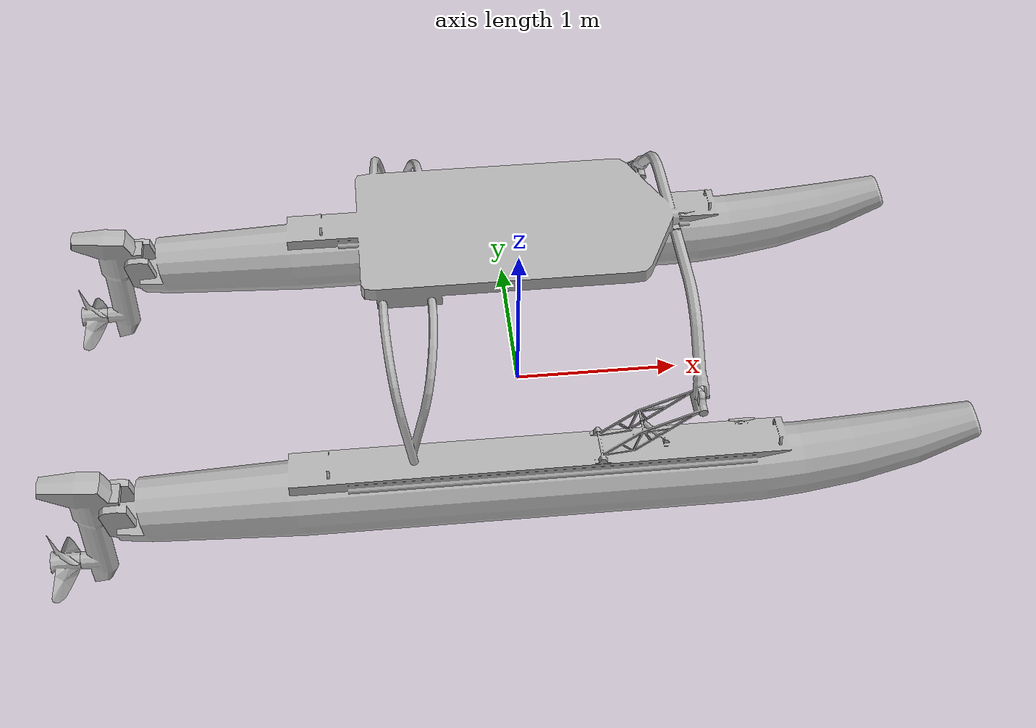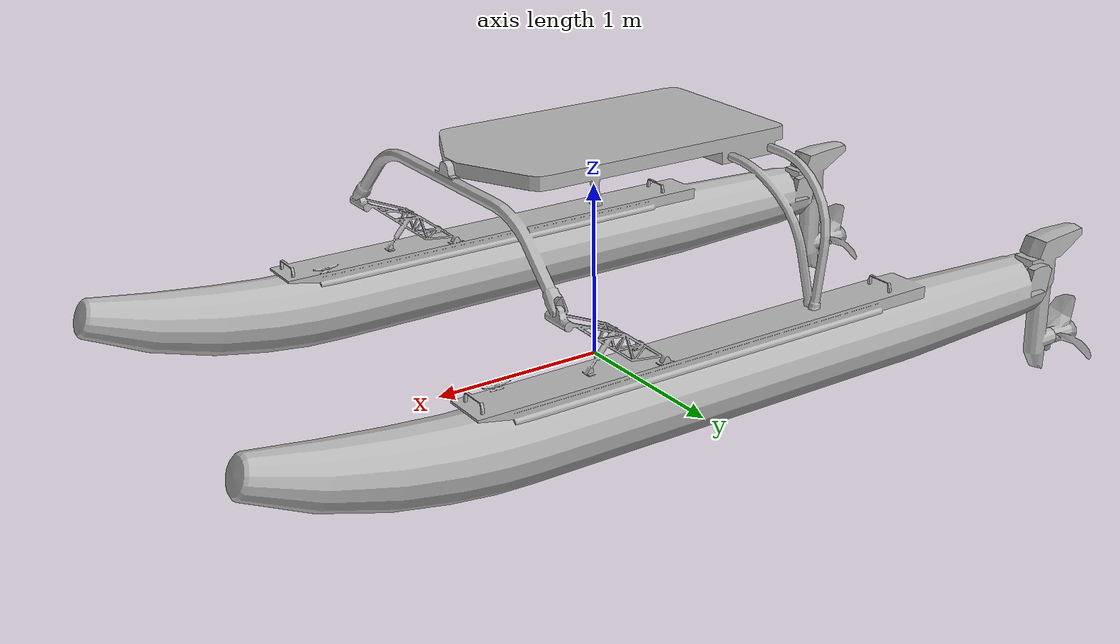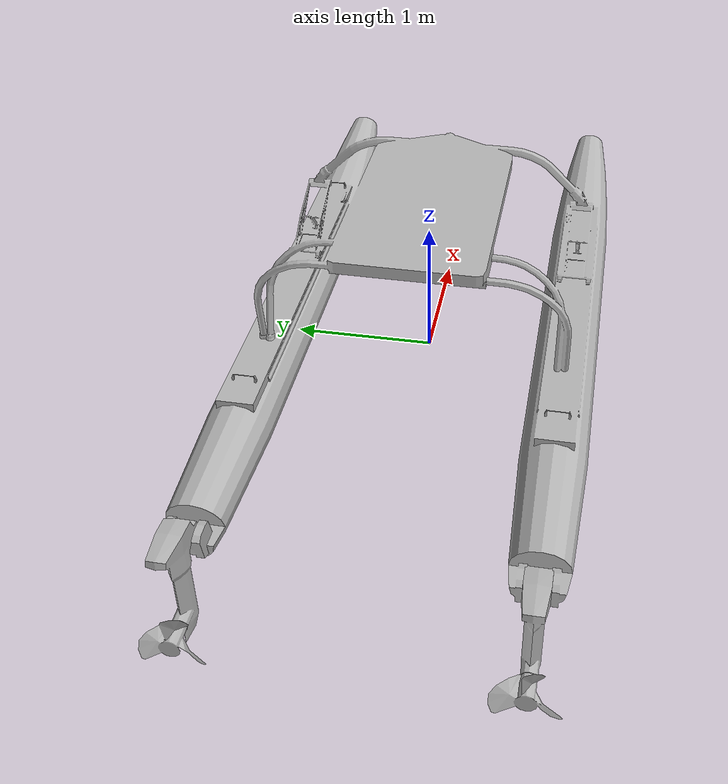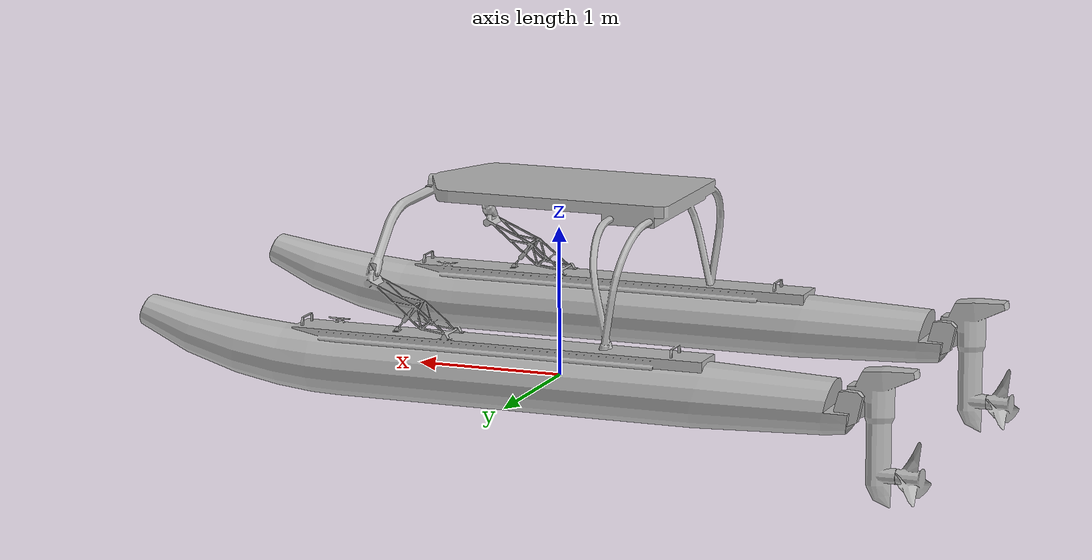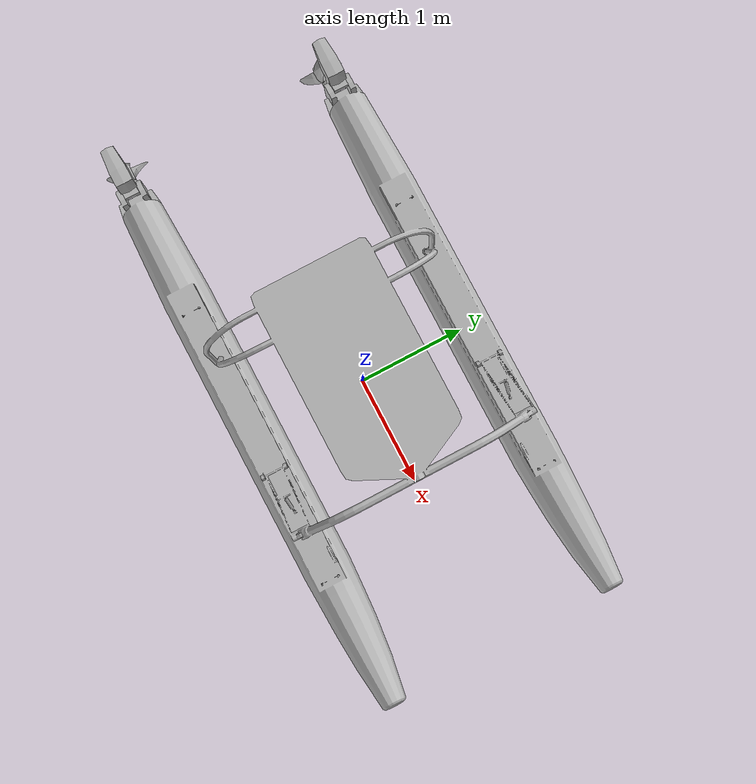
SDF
<sdf version="1.9">
 <world name="wamv_ardupilot_waves">
  <plugin filename="gz-sim-physics-system" name="gz::sim::systems::Physics"/>
  <plugin filename="gz-sim-sensors-system" name="gz::sim::systems::Sensors">
   <render_engine>ogre2</render_engine>
   <background_color>0.62 0.72 0.84</background_color>
  </plugin>
  <plugin filename="gz-sim-scene-broadcaster-system" name="gz::sim::systems::SceneBroadcaster"/>
  <plugin filename="gz-sim-user-commands-system" name="gz::sim::systems::UserCommands"/>
  <plugin filename="gz-sim-imu-system" name="gz::sim::systems::Imu"/>
  <scene><ambient>0.32 0.36 0.42</ambient><background>0.62 0.72 0.84</background></scene>
  <light type="directional" name="sun">
   <pose>0 0 10 0 0 0</pose>
   <diffuse>1.0 0.95 0.86 1</diffuse>
   <specular>0.95 0.95 0.9 1</specular>
   <direction>-0.35 0.25 -0.9</direction>
  </light>
  <light type="directional" name="sky_fill">
   <cast_shadows>false</cast_shadows>
   <pose>0 0 10 0 0 0</pose>
   <diffuse>0.22 0.28 0.34 1</diffuse>
   <specular>0.08 0.1 0.12 1</specular>
   <direction>0.55 -0.35 -0.75</direction>
  </light>
  <spherical_coordinates>
   <surface_model>EARTH_WGS84</surface_model>
   <world_frame_orientation>ENU</world_frame_orientation>
   <latitude_deg>51.566151</latitude_deg>
   <longitude_deg>-4.034345</longitude_deg>
   <elevation>0</elevation>
   <heading_deg>0</heading_deg>
  </spherical_coordinates>
  <include><name>wamv</name><uri>model://wamv/model_waves.sdf</uri></include>
 </world>
</sdf>

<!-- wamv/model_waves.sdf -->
<sdf version="1.9">
  <model name="wamv">
    <static>false</static>
    <self_collide>false</self_collide>

    <link name="base_link">
      <inertial>
        <pose>0 0 -0.28 0 0 0</pose>
        <mass>180.0</mass>
        <inertia>
          <ixx>120.0</ixx>
          <ixy>0.0</ixy>
          <ixz>0.0</ixz>
          <iyy>393.0</iyy>
          <iyz>0.0</iyz>
          <izz>446.0</izz>
        </inertia>
      </inertial>

      <visual name="base_visual">
        <geometry>
          <mesh>
            <uri>model://wamv/meshes/WAM-V-Base.dae</uri>
          </mesh>
        </geometry>
      </visual>

      <collision name="top_base">
        <pose>0 0 1.25 0 0 0</pose>
        <geometry>
          <box>
            <size>1.85 1 0.1</size>
          </box>
        </geometry>
      </collision>

      <collision name="left_float">
        <pose>-0.4 1.03 0.2 0 1.57 0</pose>
        <geometry>
          <cylinder>
            <length>4</length>
            <radius>0.2</radius>
          </cylinder>
        </geometry>
      </collision>

      <collision name="left_mid_float">
        <pose>1.85 1.03 0.3 0 1.38 0</pose>
        <geometry>
          <cylinder>
            <length>0.5</length>
            <radius>0.17</radius>
          </cylinder>
        </geometry>
      </collision>

      <collision name="left_front_float">
        <pose>2.3 1.03 0.4 0 1.3 0</pose>
        <geometry>
          <cylinder>
            <length>0.45</length>
            <radius>0.12</radius>
          </cylinder>
        </geometry>
      </collision>

      <collision name="right_float">
        <pose>-0.4 -1.03 0.2 0 1.57 0</pose>
        <geometry>
          <cylinder>
            <length>4</length>
            <radius>0.2</radius>
          </cylinder>
        </geometry>
      </collision>

      <collision name="right_mid_float">
        <pose>1.85 -1.03 0.3 0 1.38 0</pose>
        <geometry>
          <cylinder>
            <length>0.5</length>
            <radius>0.17</radius>
          </cylinder>
        </geometry>
      </collision>

      <collision name="right_front_float">
        <pose>2.3 -1.03 0.4 0 1.3 0</pose>
        <geometry>
          <cylinder>
            <length>0.45</length>
            <radius>0.12</radius>
          </cylinder>
        </geometry>
      </collision>
    </link>

    <link name="imu_link">
      <inertial>
        <mass>0.1</mass>
        <inertia>
          <ixx>0.0001</ixx>
          <ixy>0.0</ixy>
          <ixz>0.0</ixz>
          <iyy>0.0001</iyy>
          <iyz>0.0</iyz>
          <izz>0.0001</izz>
        </inertia>
      </inertial>
      <sensor name="imu_sensor" type="imu">
        <pose degrees="true">0 0 0 180 0 0</pose>
        <always_on>1</always_on>
        <update_rate>1000</update_rate>
      </sensor>
    </link>

    <joint name="imu_joint" type="fixed">
      <parent>base_link</parent>
      <child>imu_link</child>
    </joint>

    <link name="left_engine_link">
      <pose>-2.373776 1.027135 0.318237 0 0 0</pose>
      <visual name="left_engine_visual">
        <geometry>
          <mesh>
            <uri>model://wamv/meshes/engine.dae</uri>
          </mesh>
        </geometry>
      </visual>
      <collision name="left_engine_vertical_axis_collision">
        <pose>-0.16 0 -0.24 0 0 0</pose>
        <geometry>
          <box>
            <size>0.2 0.15 0.83</size>
          </box>
        </geometry>
      </collision>
      <collision name="left_engine_rear_end_collision">
        <pose>-0.34 0 0.12 0 0 0</pose>
        <geometry>
          <box>
            <size>0.12 0.15 0.12</size>
          </box>
        </geometry>
      </collision>
      <inertial>
        <mass>15.0</mass>
        <inertia>
          <ixx>0.889245</ixx>
          <ixy>0.0</ixy>
          <ixz>0.0</ixz>
          <iyy>0.811125</iyy>
          <iyz>0.0</iyz>
          <izz>0.078125</izz>
        </inertia>
      </inertial>
    </link>

    <link name="left_propeller_link">
      <pose>-2.651932 1.027135 -0.191134 0 0 0</pose>
      <visual name="left_propeller_visual">
        <geometry>
          <mesh>
            <uri>model://wamv/meshes/propeller.dae</uri>
          </mesh>
        </geometry>
      </visual>
      <collision name="left_propeller_collision">
        <pose>-0.08 0 0 0 1.57 0</pose>
        <geometry>
          <cylinder>
            <length>0.18</length>
            <radius>0.24</radius>
          </cylinder>
        </geometry>
      </collision>
      <inertial>
        <mass>0.5</mass>
        <inertia>
          <ixx>0.008545</ixx>
          <ixy>0.0</ixy>
          <ixz>0.0</ixz>
          <iyy>0.008545</iyy>
          <iyz>0.0</iyz>
          <izz>0.0144</izz>
        </inertia>
      </inertial>
    </link>

    <joint name="left_chassis_engine_joint" type="fixed">
      <parent>base_link</parent>
      <child>left_engine_link</child>
    </joint>

    <joint name="left_engine_propeller_joint" type="revolute">
      <parent>left_engine_link</parent>
      <child>left_propeller_link</child>
      <axis>
        <xyz>1 0 0</xyz>
        <limit>
          <effort>100</effort>
          <velocity>100</velocity>
        </limit>
        <dynamics>
          <friction>0.05</friction>
          <damping>0.05</damping>
        </dynamics>
      </axis>
    </joint>

    <link name="right_engine_link">
      <pose>-2.373776 -1.027135 0.318237 0 0 0</pose>
      <visual name="right_engine_visual">
        <geometry>
          <mesh>
            <uri>model://wamv/meshes/engine.dae</uri>
          </mesh>
        </geometry>
      </visual>
      <collision name="right_engine_vertical_axis_collision">
        <pose>-0.16 0 -0.24 0 0 0</pose>
        <geometry>
          <box>
            <size>0.2 0.15 0.83</size>
          </box>
        </geometry>
      </collision>
      <collision name="right_engine_rear_end_collision">
        <pose>-0.34 0 0.12 0 0 0</pose>
        <geometry>
          <box>
            <size>0.12 0.15 0.12</size>
          </box>
        </geometry>
      </collision>
      <inertial>
        <mass>15.0</mass>
        <inertia>
          <ixx>0.889245</ixx>
          <ixy>0.0</ixy>
          <ixz>0.0</ixz>
          <iyy>0.811125</iyy>
          <iyz>0.0</iyz>
          <izz>0.078125</izz>
        </inertia>
      </inertial>
    </link>

    <link name="right_propeller_link">
      <pose>-2.651932 -1.027135 -0.191134 0 0 0</pose>
      <visual name="right_propeller_visual">
        <geometry>
          <mesh>
            <uri>model://wamv/meshes/propeller.dae</uri>
          </mesh>
        </geometry>
      </visual>
      <collision name="right_propeller_collision">
        <pose>-0.08 0 0 0 1.57 0</pose>
        <geometry>
          <cylinder>
            <length>0.18</length>
            <radius>0.24</radius>
          </cylinder>
        </geometry>
      </collision>
      <inertial>
        <mass>0.5</mass>
        <inertia>
          <ixx>0.008545</ixx>
          <ixy>0.0</ixy>
          <ixz>0.0</ixz>
          <iyy>0.008545</iyy>
          <iyz>0.0</iyz>
          <izz>0.0144</izz>
        </inertia>
      </inertial>
    </link>

    <joint name="right_chassis_engine_joint" type="fixed">
      <parent>base_link</parent>
      <child>right_engine_link</child>
    </joint>

    <joint name="right_engine_propeller_joint" type="revolute">
      <parent>right_engine_link</parent>
      <child>right_propeller_link</child>
      <axis>
        <xyz>1 0 0</xyz>
        <limit>
          <effort>100</effort>
          <velocity>100</velocity>
        </limit>
        <dynamics>
          <friction>0.05</friction>
          <damping>0.05</damping>
        </dynamics>
      </axis>
    </joint>

    <link name="chase_camera_link">
      <pose>-8 0 4 0 0.42 0</pose>
      <inertial>
        <mass>0.01</mass>
        <inertia>
          <ixx>0.00001</ixx>
          <ixy>0.0</ixy>
          <ixz>0.0</ixz>
          <iyy>0.00001</iyy>
          <iyz>0.0</iyz>
          <izz>0.00001</izz>
        </inertia>
      </inertial>
      <sensor name="chase_camera" type="camera">
        <camera>
          <horizontal_fov>1.25</horizontal_fov>
          <image>
            <width>480</width>
            <height>270</height>
            <format>R8G8B8</format>
          </image>
          <clip>
            <near>0.2</near>
            <far>120</far>
          </clip>
        </camera>
        <always_on>true</always_on>
        <update_rate>30</update_rate>
        <visualize>false</visualize>
        <topic>wamv_chase_camera</topic>
        <plugin filename="gz-sim-camera-video-recorder-system"
                name="gz::sim::systems::CameraVideoRecorder">
          <service>wamv_chase_camera/record_video</service>
        </plugin>
      </sensor>
    </link>

    <joint name="chase_camera_joint" type="fixed">
      <parent>base_link</parent>
      <child>chase_camera_link</child>
    </joint>

    <plugin name="gz::sim::systems::JointStatePublisher"
      filename="gz-sim-joint-state-publisher-system">
    </plugin>

    <plugin name="gz::sim::systems::Thruster"
      filename="gz-sim-thruster-system">
      <joint_name>left_engine_propeller_joint</joint_name>
      <thrust_coefficient>0.004422</thrust_coefficient>
      <fluid_density>1000</fluid_density>
      <propeller_diameter>0.2</propeller_diameter>
      <velocity_control>true</velocity_control>
    </plugin>

    <plugin name="gz::sim::systems::Thruster"
      filename="gz-sim-thruster-system">
      <joint_name>right_engine_propeller_joint</joint_name>
      <thrust_coefficient>0.004422</thrust_coefficient>
      <fluid_density>1000</fluid_density>
      <propeller_diameter>0.2</propeller_diameter>
      <velocity_control>true</velocity_control>
    </plugin>

    <plugin name="gz::sim::systems::Hydrodynamics"
      filename="gz-waves1-hydrodynamics-system">
      <enable>wamv::base_link</enable>
      <hydrodynamics>
        <damping_on>1</damping_on>
        <viscous_drag_on>1</viscous_drag_on>
        <pressure_drag_on>1</pressure_drag_on>
        <cDampL1>1.0E-6</cDampL1>
        <cDampL2>1.0E-6</cDampL2>
        <cDampR1>1.0E-6</cDampR1>
        <cDampR2>1.0E-6</cDampR2>
        <cPDrag1>1.0E+2</cPDrag1>
        <cPDrag2>1.0E+2</cPDrag2>
        <fPDrag>0.4</fPDrag>
        <cSDrag1>1.0E+2</cSDrag1>
        <cSDrag2>1.0E+2</cSDrag2>
        <fSDrag>0.4</fSDrag>
        <vRDrag>1.0</vRDrag>
      </hydrodynamics>
    </plugin>

    <plugin name="ArduPilotPlugin" filename="ArduPilotPlugin">
      <fdm_addr>127.0.0.1</fdm_addr>
      <fdm_port_in>9002</fdm_port_in>
      <connectionTimeoutMaxCount>60</connectionTimeoutMaxCount>
      <lock_step>1</lock_step>
      <gazeboXYZToNED degrees="true">0 0 0 180 0 90</gazeboXYZToNED>
      <modelXYZToAirplaneXForwardZDown degrees="true">0 0 0 180 0 0</modelXYZToAirplaneXForwardZDown>
      <imuName>imu_link::imu_sensor</imuName>

      <control channel="0">
        <jointName>left_engine_propeller_joint</jointName>
        <multiplier>450</multiplier>
        <offset>-0.5</offset>
        <servo_min>1000</servo_min>
        <servo_max>2000</servo_max>
        <type>COMMAND</type>
        <cmd_topic>/model/wamv/joint/left_engine_propeller_joint/cmd_thrust</cmd_topic>
      </control>

      <control channel="2">
        <jointName>right_engine_propeller_joint</jointName>
        <multiplier>450</multiplier>
        <offset>-0.5</offset>
        <servo_min>1000</servo_min>
        <servo_max>2000</servo_max>
        <type>COMMAND</type>
        <cmd_topic>/model/wamv/joint/right_engine_propeller_joint/cmd_thrust</cmd_topic>
      </control>
    </plugin>
  </model>
</sdf>
